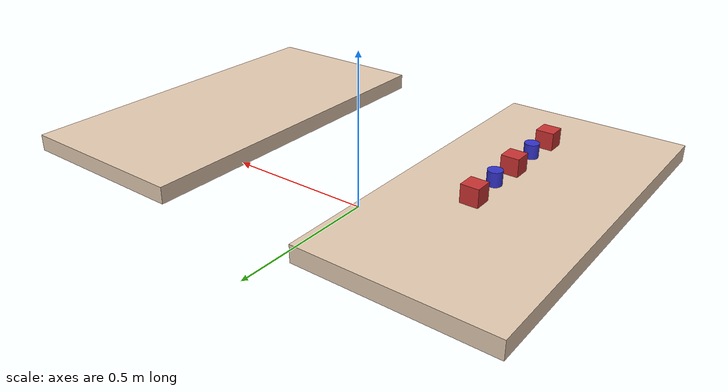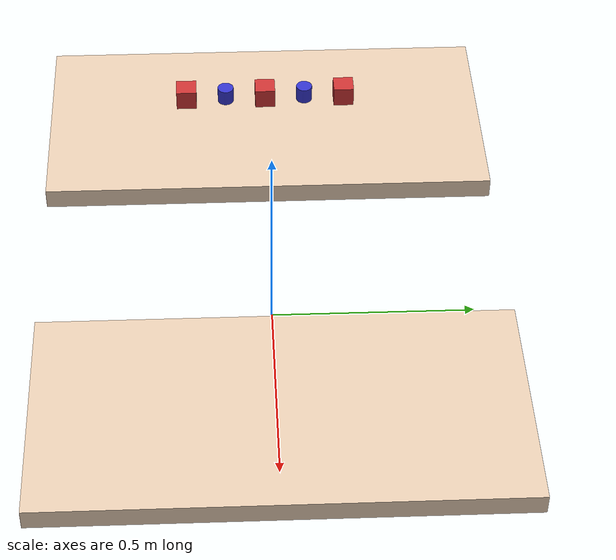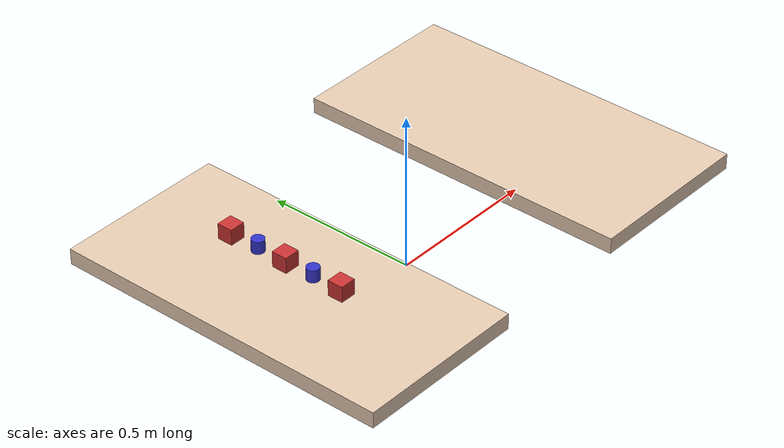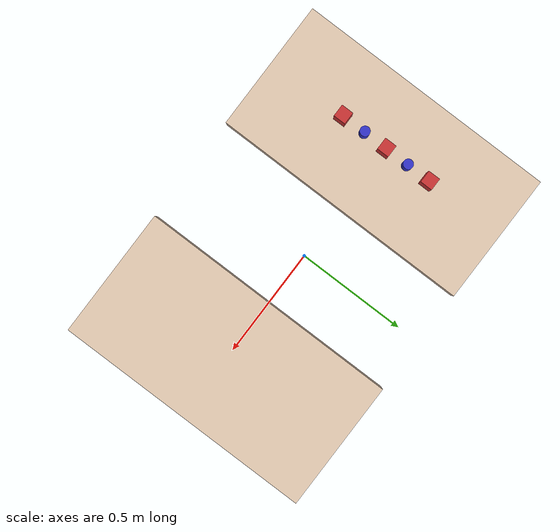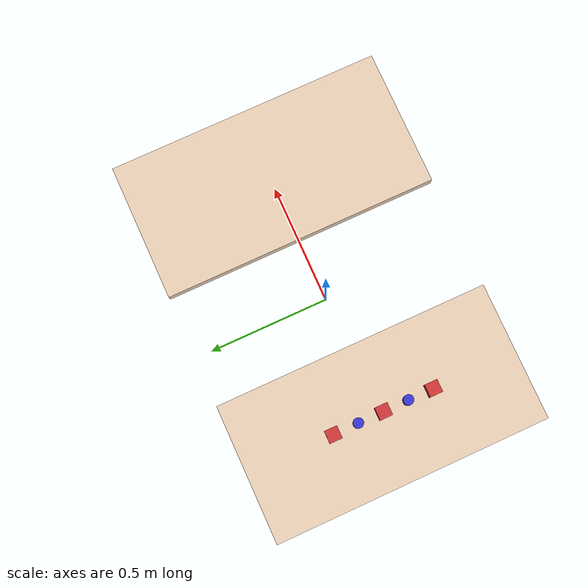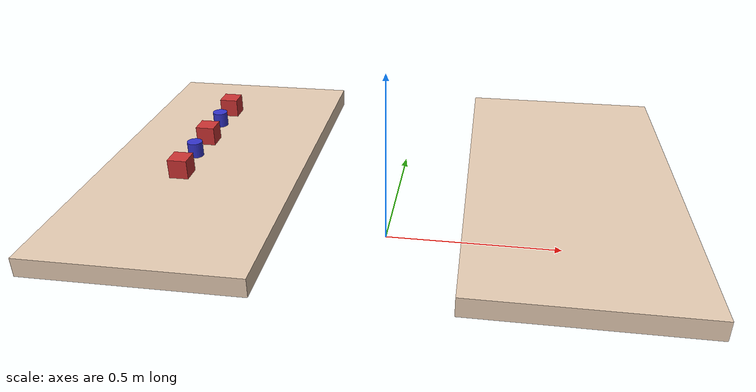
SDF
<sdf version="1.6">
 <world name="pick_and_place_world">
  <joint name="world_to_robot" type="fixed"><parent>world</parent><child>j2s7s300::base</child></joint>
  <model name="table_source">
   <static>true</static>
   <pose>0.5 0 0.2 0 0 0</pose>
   <link name="table_source_top_link">
    <visual name="visual">
     <geometry><box><size>0.55 1.1 0.05</size></box></geometry>
     <material><diffuse>0.9 0.8 0.7 1.0</diffuse></material>
    </visual>
    <collision name="collision">
     <geometry><box><size>0.55 1.1 0.05</size></box></geometry>
     <proximity_properties><mu_dynamic>0.3</mu_dynamic><mu_static>0.3</mu_static></proximity_properties>
    </collision>
   </link>
  </model>
  <model name="table_target">
   <static>true</static>
   <pose>-0.5 0 0.2 0 0 0</pose>
   <link name="table_target_top_link">
    <visual name="visual">
     <geometry><box><size>0.55 1.1 0.05</size></box></geometry>
     <material><diffuse>0.9 0.8 0.7 1.0</diffuse></material>
    </visual>
    <collision name="collision">
     <geometry><box><size>0.55 1.1 0.05</size></box></geometry>
     <proximity_properties><mu_dynamic>0.3</mu_dynamic><mu_static>0.3</mu_static></proximity_properties>
    </collision>
   </link>
  </model>
  <model name="object_cube_1">
   <pose>-0.5 0.2 0.3 0 0 0</pose>
   <link name="link">
    <inertial>
     <mass>0.1</mass>
     <inertia><ixx>8.33e-5</ixx><iyy>8.33e-5</iyy><izz>8.33e-5</izz><ixy>0</ixy><ixz>0</ixz><iyz>0</iyz></inertia>
    </inertial>
    <collision name="collision">
     <geometry><box><size>0.05 0.05 0.05</size></box></geometry>
     <proximity_properties><mu_dynamic>0.5</mu_dynamic><mu_static>0.5</mu_static></proximity_properties>
    </collision>
    <visual name="visual">
     <geometry><box><size>0.05 0.05 0.05</size></box></geometry>
     <material><diffuse>0.8 0.2 0.2 1.0</diffuse></material>
    </visual>
   </link>
  </model>
  <model name="object_cube_2">
   <pose>-0.5 -0.2 0.3 0 0 0</pose>
   <link name="link">
    <inertial>
     <mass>0.1</mass>
     <inertia><ixx>8.33e-5</ixx><iyy>8.33e-5</iyy><izz>8.33e-5</izz><ixy>0</ixy><ixz>0</ixz><iyz>0</iyz></inertia>
    </inertial>
    <collision name="collision">
     <geometry><box><size>0.05 0.05 0.05</size></box></geometry>
     <proximity_properties><mu_dynamic>0.5</mu_dynamic><mu_static>0.5</mu_static></proximity_properties>
    </collision>
    <visual name="visual">
     <geometry><box><size>0.05 0.05 0.05</size></box></geometry>
     <material><diffuse>0.8 0.2 0.2 1.0</diffuse></material>
    </visual>
   </link>
  </model>
  <model name="object_cube_3">
   <pose>-0.5 0 0.3 0 0 0</pose>
   <link name="link">
    <inertial>
     <mass>0.1</mass>
     <inertia><ixx>8.33e-5</ixx><iyy>8.33e-5</iyy><izz>8.33e-5</izz><ixy>0</ixy><ixz>0</ixz><iyz>0</iyz></inertia>
    </inertial>
    <collision name="collision">
     <geometry><box><size>0.05 0.05 0.05</size></box></geometry>
     <proximity_properties><mu_dynamic>0.5</mu_dynamic><mu_static>0.5</mu_static></proximity_properties>
    </collision>
    <visual name="visual">
     <geometry><box><size>0.05 0.05 0.05</size></box></geometry>
     <material><diffuse>0.8 0.2 0.2 1.0</diffuse></material>
    </visual>
   </link>
  </model>
  <model name="cylinder_1">
   <pose>-0.5 -0.1 0.3 0 0 0</pose>
   <link name="link">
    <inertial>
     <mass>0.05</mass>
     <inertia><ixx>1.67e-5</ixx><iyy>1.67e-5</iyy><izz>3.33e-5</izz><ixy>0</ixy><ixz>0</ixz><iyz>0</iyz></inertia>
    </inertial>
    <collision name="collision">
     <geometry><cylinder><radius>0.02</radius><length>0.04</length></cylinder></geometry>
     <proximity_properties><mu_dynamic>0.5</mu_dynamic><mu_static>0.5</mu_static></proximity_properties>
    </collision>
    <visual name="visual">
     <geometry><cylinder><radius>0.02</radius><length>0.04</length></cylinder></geometry>
     <material><diffuse>0.2 0.2 0.8 1.0</diffuse></material>
    </visual>
   </link>
  </model>
  <model name="cylinder_2">
   <pose>-0.5 0.1 0.3 0 0 0</pose>
   <link name="link">
    <inertial>
     <mass>0.05</mass>
     <inertia><ixx>1.67e-5</ixx><iyy>1.67e-5</iyy><izz>3.33e-5</izz><ixy>0</ixy><ixz>0</ixz><iyz>0</iyz></inertia>
    </inertial>
    <collision name="collision">
     <geometry><cylinder><radius>0.02</radius><length>0.04</length></cylinder></geometry>
     <proximity_properties><mu_dynamic>0.5</mu_dynamic><mu_static>0.5</mu_static></proximity_properties>
    </collision>
    <visual name="visual">
     <geometry><cylinder><radius>0.02</radius><length>0.04</length></cylinder></geometry>
     <material><diffuse>0.2 0.2 0.8 1.0</diffuse></material>
    </visual>
   </link>
  </model>
 </world>
</sdf>
